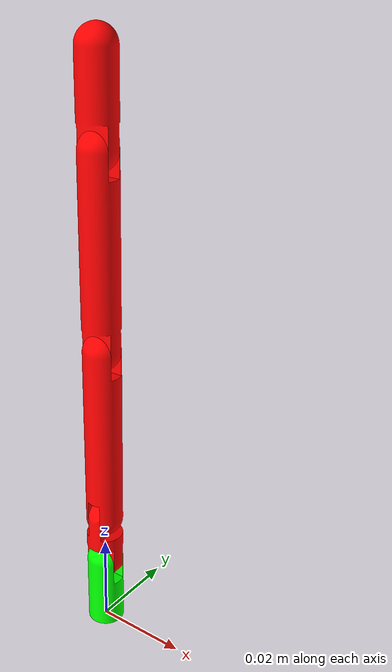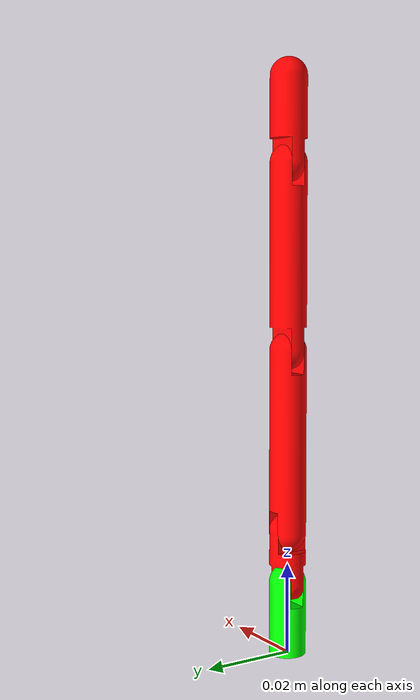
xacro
<?xml version="1.0"?>

<robot xmlns:xacro="http://www.ros.org/wiki/xacro" name="one_finger">

  <xacro:arg name="prefix" default="thumb"/>
  <xacro:property name="prefix" value="$(arg prefix)" />

  <link name="${prefix}_metacarpals">
    <visual>
      <origin xyz="0 0 0.0" rpy="0 0 0" />
      <geometry>
        <mesh filename="package://ros2_galactic_urdf_finger/thumb_metacarpal_joint.dae"/>
      </geometry>
      <material name="green">
        <color rgba="0 1 0 1" />
      </material>
    </visual>
    <collision>
      <geometry>
        <mesh filename="package://ros2_galactic_urdf_finger/thumb_metacarpal_joint.dae"/>
      </geometry>
    </collision>
    <inertial>
      <mass value="0.01"/>
      <inertia ixx="0.4" ixy="0.0" ixz="0.0" iyy="0.4" iyz="0.0" izz="0.2"/>
    </inertial>
  </link>

  <link name="${prefix}_metacarpals_2">
    <visual>
      <origin xyz="0 0 -0.004" rpy="0 0 1.6" />
      <geometry>
        <mesh filename="package://ros2_galactic_urdf_finger/metacarpals_joint.dae"/>
      </geometry>
      <material name="red">
        <color rgba="1 0 0 1" />
      </material>
    </visual>
    <collision>
      <geometry>
        <mesh filename="package://ros2_galactic_urdf_finger/metacarpals_joint.dae"/>
      </geometry>
    </collision>
    <inertial>
      <mass value="0.01"/>
      <inertia ixx="0.4" ixy="0.0" ixz="0.0" iyy="0.4" iyz="0.0" izz="0.2"/>
    </inertial>
  </link>

  <link name="${prefix}_proximal">
    <visual>
      <origin xyz="0 0 -0.004" rpy="0 0 0" />
      <geometry>
        <mesh filename="package://ros2_galactic_urdf_finger/proximal.dae"/>
      </geometry>
      <material name="red">
        <color rgba="1 0 0 1" />
      </material>
    </visual>
    <collision>
      <geometry>
        <mesh filename="package://ros2_galactic_urdf_finger/proximal.dae"/>
      </geometry>
    </collision>
    <inertial>
      <mass value="0.01"/>
      <inertia ixx="0.4" ixy="0.0" ixz="0.0" iyy="0.4" iyz="0.0" izz="0.2"/>
    </inertial>
  </link>

  <link name="${prefix}_intermediate">
    <visual>
      <origin xyz="0 0 -0.004" rpy="0 0 0" />
      <geometry>
        <mesh filename="package://ros2_galactic_urdf_finger/intermediate.dae"/>
      </geometry>
      <material name="red">
        <color rgba="1 0 0 1" />
      </material>
    </visual>
    <collision>
      <geometry>
        <mesh filename="package://ros2_galactic_urdf_finger/intermediate.dae"/>
      </geometry>
    </collision>
    <inertial>
      <mass value="0.01"/>
      <inertia ixx="0.4" ixy="0.0" ixz="0.0" iyy="0.4" iyz="0.0" izz="0.2"/>
    </inertial>
  </link>

  <link name="${prefix}_distal">
    <visual>
      <origin xyz="0 0 -0.004" rpy="0 0 0" />
      <geometry>
        <mesh filename="package://ros2_galactic_urdf_finger/distal.dae"/>
      </geometry>
      <material name="red">
        <color rgba="1 0 0 1" />
      </material>
    </visual>
    <collision>
      <geometry>
        <mesh filename="package://ros2_galactic_urdf_finger/distal.dae"/>
      </geometry>
    </collision>
    <inertial>
      <mass value="0.01"/>
      <inertia ixx="0.4" ixy="0.0" ixz="0.0" iyy="0.4" iyz="0.0" izz="0.2"/>
    </inertial>
  </link>

  <joint name="${prefix}_metacarpals_joint" type="revolute">
    <origin xyz="0 0 0.016" rpy="0 0 0"/>
    <parent link="${prefix}_metacarpals"/>
    <child link="${prefix}_metacarpals_2"/>
    <axis xyz="0 1 0"/>
    <limit effort="30" velocity="1.0" lower="-1.6" upper="1.6" />
  </joint>

  <joint name="${prefix}_metacarpals_2_joint" type="revolute">
    <origin xyz="0 0 0.011" rpy="0 0 0"/>
    <parent link="${prefix}_metacarpals_2"/>
    <child link="${prefix}_proximal"/>
    <axis xyz="1 0 0"/>
    <limit effort="30" velocity="1.0" lower="-1.6" upper="1.6" />
  </joint>

  <joint name="${prefix}_proximal_joint" type="revolute">
    <origin xyz="0 0 0.04" rpy="0 0 0"/>
    <parent link="${prefix}_proximal"/>
    <child link="${prefix}_intermediate"/>
    <axis xyz="0 1 0"/>
    <limit effort="30" velocity="1.0" lower="-1.6" upper="1.6" />
  </joint>

  <joint name="${prefix}_intermediate_joint" type="revolute">
    <origin xyz="0 0 0.04" rpy="0 0 0"/>
    <parent link="${prefix}_intermediate"/>
    <child link="${prefix}_distal"/>
    <axis xyz="0 1 0"/>
    <limit effort="30" velocity="1.0" lower="-1.6" upper="1.6" />
  </joint>

</robot>
